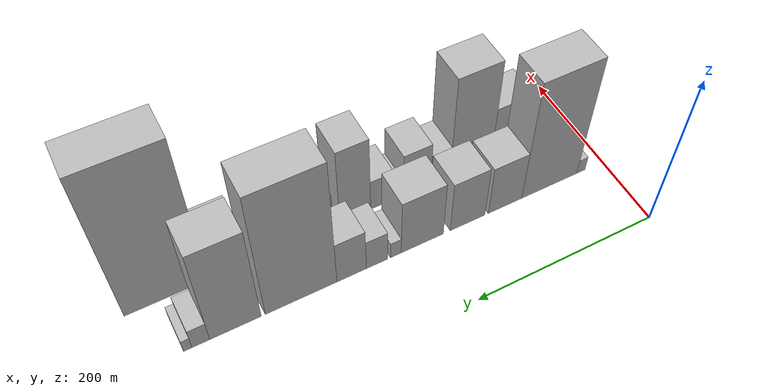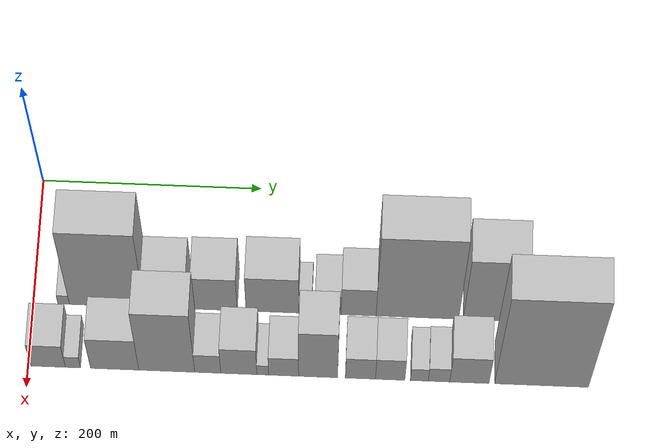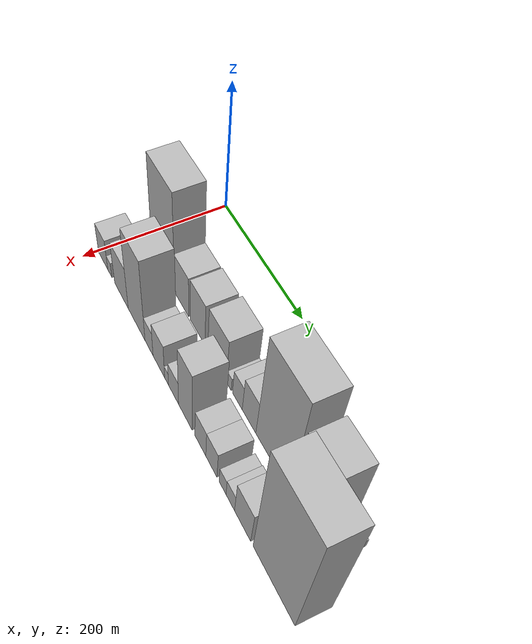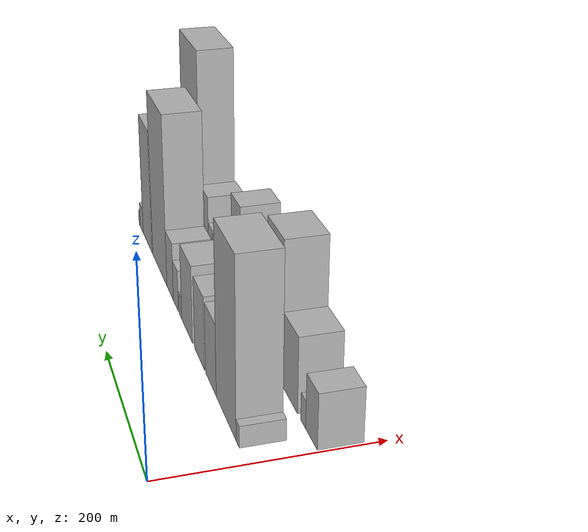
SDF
<sdf version="1.6">
 <world name="default">
  <model name="building_15">
   <static>1</static>
   <pose>100.0000 27.5183 0 0.000000 0.000000 0.000000</pose>
   <link name="link">
    <pose>0 0 10.50 0 0 0</pose>
    <collision name="collision"><geometry><box><size>40.0000 10.3953 21.0000</size></box></geometry></collision>
    <visual name="visual">
     <cast_shadows>0</cast_shadows>
     <geometry><box><size>40.0000 10.3953 21.0000</size></box></geometry>
     <material>
      <script>
       <uri>model://HANNAS_wall/materials/scripts</uri>
       <uri>model://HANNAS_wall/materials/textures</uri>
       <name>vrc/HANNAS_wall</name>
      </script>
     </material>
    </visual>
   </link>
  </model>
  <model name="building_16">
   <static>1</static>
   <pose>100.0000 66.5081 0 0.000000 0.000000 0.000000</pose>
   <link name="link">
    <pose>0 0 85.50 0 0 0</pose>
    <collision name="collision"><geometry><box><size>40.0000 67.5843 171.0000</size></box></geometry></collision>
    <visual name="visual">
     <cast_shadows>0</cast_shadows>
     <geometry><box><size>40.0000 67.5843 171.0000</size></box></geometry>
     <material>
      <script>
       <uri>model://HANNAS_wall/materials/scripts</uri>
       <uri>model://HANNAS_wall/materials/textures</uri>
       <name>vrc/HANNAS_wall</name>
      </script>
     </material>
    </visual>
   </link>
  </model>
  <model name="building_17">
   <static>1</static>
   <pose>100.0000 120.1196 0 0.000000 0.000000 0.000000</pose>
   <link name="link">
    <pose>0 0 36.00 0 0 0</pose>
    <collision name="collision"><geometry><box><size>40.0000 39.6385 72.0000</size></box></geometry></collision>
    <visual name="visual">
     <cast_shadows>0</cast_shadows>
     <geometry><box><size>40.0000 39.6385 72.0000</size></box></geometry>
     <material>
      <script>
       <uri>model://HANNAS_wall/materials/scripts</uri>
       <uri>model://HANNAS_wall/materials/textures</uri>
       <name>vrc/HANNAS_wall</name>
      </script>
     </material>
    </visual>
   </link>
  </model>
  <model name="building_18">
   <static>1</static>
   <pose>100.0000 163.9868 0 0.000000 0.000000 0.000000</pose>
   <link name="link">
    <pose>0 0 37.50 0 0 0</pose>
    <collision name="collision"><geometry><box><size>40.0000 40.0959 75.0000</size></box></geometry></collision>
    <visual name="visual">
     <cast_shadows>0</cast_shadows>
     <geometry><box><size>40.0000 40.0959 75.0000</size></box></geometry>
     <material>
      <script>
       <uri>model://HANNAS_wall/materials/scripts</uri>
       <uri>model://HANNAS_wall/materials/textures</uri>
       <name>vrc/HANNAS_wall</name>
      </script>
     </material>
    </visual>
   </link>
  </model>
  <model name="building_19">
   <static>1</static>
   <pose>100.0000 215.6951 0 0.000000 0.000000 0.000000</pose>
   <link name="link">
    <pose>0 0 40.50 0 0 0</pose>
    <collision name="collision"><geometry><box><size>40.0000 47.3208 81.0000</size></box></geometry></collision>
    <visual name="visual">
     <cast_shadows>0</cast_shadows>
     <geometry><box><size>40.0000 47.3208 81.0000</size></box></geometry>
     <material>
      <script>
       <uri>model://HANNAS_wall/materials/scripts</uri>
       <uri>model://HANNAS_wall/materials/textures</uri>
       <name>vrc/HANNAS_wall</name>
      </script>
     </material>
    </visual>
   </link>
  </model>
  <model name="building_20">
   <static>1</static>
   <pose>100.0000 245.2109 0 0.000000 0.000000 0.000000</pose>
   <link name="link">
    <pose>0 0 12.00 0 0 0</pose>
    <collision name="collision"><geometry><box><size>40.0000 11.7108 24.0000</size></box></geometry></collision>
    <visual name="visual">
     <cast_shadows>0</cast_shadows>
     <geometry><box><size>40.0000 11.7108 24.0000</size></box></geometry>
     <material>
      <script>
       <uri>model://HANNAS_wall/materials/scripts</uri>
       <uri>model://HANNAS_wall/materials/textures</uri>
       <name>vrc/HANNAS_wall</name>
      </script>
     </material>
    </visual>
   </link>
  </model>
  <model name="building_21">
   <static>1</static>
   <pose>100.0000 265.7919 0 0.000000 0.000000 0.000000</pose>
   <link name="link">
    <pose>0 0 22.50 0 0 0</pose>
    <collision name="collision"><geometry><box><size>40.0000 23.4512 45.0000</size></box></geometry></collision>
    <visual name="visual">
     <cast_shadows>0</cast_shadows>
     <geometry><box><size>40.0000 23.4512 45.0000</size></box></geometry>
     <material>
      <script>
       <uri>model://HANNAS_wall/materials/scripts</uri>
       <uri>model://HANNAS_wall/materials/textures</uri>
       <name>vrc/HANNAS_wall</name>
      </script>
     </material>
    </visual>
   </link>
  </model>
  <model name="building_22">
   <static>1</static>
   <pose>100.0000 293.2767 0 0.000000 0.000000 0.000000</pose>
   <link name="link">
    <pose>0 0 31.50 0 0 0</pose>
    <collision name="collision"><geometry><box><size>40.0000 31.5184 63.0000</size></box></geometry></collision>
    <visual name="visual">
     <cast_shadows>0</cast_shadows>
     <geometry><box><size>40.0000 31.5184 63.0000</size></box></geometry>
     <material>
      <script>
       <uri>model://HANNAS_wall/materials/scripts</uri>
       <uri>model://HANNAS_wall/materials/textures</uri>
       <name>vrc/HANNAS_wall</name>
      </script>
     </material>
    </visual>
   </link>
  </model>
  <model name="building_23">
   <static>1</static>
   <pose>100.0000 346.1778 0 0.000000 0.000000 0.000000</pose>
   <link name="link">
    <pose>0 0 93.00 0 0 0</pose>
    <collision name="collision"><geometry><box><size>40.0000 74.2838 186.0000</size></box></geometry></collision>
    <visual name="visual">
     <cast_shadows>0</cast_shadows>
     <geometry><box><size>40.0000 74.2838 186.0000</size></box></geometry>
     <material>
      <script>
       <uri>model://HANNAS_wall/materials/scripts</uri>
       <uri>model://HANNAS_wall/materials/textures</uri>
       <name>vrc/HANNAS_wall</name>
      </script>
     </material>
    </visual>
   </link>
  </model>
  <model name="building_24">
   <static>1</static>
   <pose>100.0000 412.9397 0 0.000000 0.000000 0.000000</pose>
   <link name="link">
    <pose>0 0 70.50 0 0 0</pose>
    <collision name="collision"><geometry><box><size>40.0000 51.2400 141.0000</size></box></geometry></collision>
    <visual name="visual">
     <cast_shadows>0</cast_shadows>
     <geometry><box><size>40.0000 51.2400 141.0000</size></box></geometry>
     <material>
      <script>
       <uri>model://HANNAS_wall/materials/scripts</uri>
       <uri>model://HANNAS_wall/materials/textures</uri>
       <name>vrc/HANNAS_wall</name>
      </script>
     </material>
    </visual>
   </link>
  </model>
  <model name="building_25">
   <static>1</static>
   <pose>100.0000 447.2016 0 0.000000 0.000000 0.000000</pose>
   <link name="link">
    <pose>0 0 15.00 0 0 0</pose>
    <collision name="collision"><geometry><box><size>40.0000 17.2837 30.0000</size></box></geometry></collision>
    <visual name="visual">
     <cast_shadows>0</cast_shadows>
     <geometry><box><size>40.0000 17.2837 30.0000</size></box></geometry>
     <material>
      <script>
       <uri>model://HANNAS_wall/materials/scripts</uri>
       <uri>model://HANNAS_wall/materials/textures</uri>
       <name>vrc/HANNAS_wall</name>
      </script>
     </material>
    </visual>
   </link>
  </model>
  <model name="building_26">
   <static>1</static>
   <pose>100.0000 459.8907 0 0.000000 0.000000 0.000000</pose>
   <link name="link">
    <pose>0 0 9.00 0 0 0</pose>
    <collision name="collision"><geometry><box><size>40.0000 8.0946 18.0000</size></box></geometry></collision>
    <visual name="visual">
     <cast_shadows>0</cast_shadows>
     <geometry><box><size>40.0000 8.0946 18.0000</size></box></geometry>
     <material>
      <script>
       <uri>model://HANNAS_wall/materials/scripts</uri>
       <uri>model://HANNAS_wall/materials/textures</uri>
       <name>vrc/HANNAS_wall</name>
      </script>
     </material>
    </visual>
   </link>
  </model>
  <model name="building_38">
   <static>1</static>
   <pose>160.0000 18.0948 0 0.000000 0.000000 0.000000</pose>
   <link name="link">
    <pose>0 0 27.00 0 0 0</pose>
    <collision name="collision"><geometry><box><size>40.0000 31.0434 54.0000</size></box></geometry></collision>
    <visual name="visual">
     <cast_shadows>0</cast_shadows>
     <geometry><box><size>40.0000 31.0434 54.0000</size></box></geometry>
     <material>
      <script>
       <uri>model://HANNAS_wall/materials/scripts</uri>
       <uri>model://HANNAS_wall/materials/textures</uri>
       <name>vrc/HANNAS_wall</name>
      </script>
     </material>
    </visual>
   </link>
  </model>
  <model name="building_39">
   <static>1</static>
   <pose>160.0000 40.2983 0 0.000000 0.000000 0.000000</pose>
   <link name="link">
    <pose>0 0 13.50 0 0 0</pose>
    <collision name="collision"><geometry><box><size>40.0000 13.3636 27.0000</size></box></geometry></collision>
    <visual name="visual">
     <cast_shadows>0</cast_shadows>
     <geometry><box><size>40.0000 13.3636 27.0000</size></box></geometry>
     <material>
      <script>
       <uri>model://HANNAS_wall/materials/scripts</uri>
       <uri>model://HANNAS_wall/materials/textures</uri>
       <name>vrc/HANNAS_wall</name>
      </script>
     </material>
    </visual>
   </link>
  </model>
  <model name="building_40">
   <static>1</static>
   <pose>160.0000 77.5541 0 0.000000 0.000000 0.000000</pose>
   <link name="link">
    <pose>0 0 37.50 0 0 0</pose>
    <collision name="collision"><geometry><box><size>40.0000 43.1480 75.0000</size></box></geometry></collision>
    <visual name="visual">
     <cast_shadows>0</cast_shadows>
     <geometry><box><size>40.0000 43.1480 75.0000</size></box></geometry>
     <material>
      <script>
       <uri>model://HANNAS_wall/materials/scripts</uri>
       <uri>model://HANNAS_wall/materials/textures</uri>
       <name>vrc/HANNAS_wall</name>
      </script>
     </material>
    </visual>
   </link>
  </model>
  <model name="building_41">
   <static>1</static>
   <pose>160.0000 124.1093 0 0.000000 0.000000 0.000000</pose>
   <link name="link">
    <pose>0 0 72.00 0 0 0</pose>
    <collision name="collision"><geometry><box><size>40.0000 49.9624 144.0000</size></box></geometry></collision>
    <visual name="visual">
     <cast_shadows>0</cast_shadows>
     <geometry><box><size>40.0000 49.9624 144.0000</size></box></geometry>
     <material>
      <script>
       <uri>model://HANNAS_wall/materials/scripts</uri>
       <uri>model://HANNAS_wall/materials/textures</uri>
       <name>vrc/HANNAS_wall</name>
      </script>
     </material>
    </visual>
   </link>
  </model>
  <model name="building_42">
   <static>1</static>
   <pose>160.0000 160.6854 0 0.000000 0.000000 0.000000</pose>
   <link name="link">
    <pose>0 0 22.50 0 0 0</pose>
    <collision name="collision"><geometry><box><size>40.0000 23.1897 45.0000</size></box></geometry></collision>
    <visual name="visual">
     <cast_shadows>0</cast_shadows>
     <geometry><box><size>40.0000 23.1897 45.0000</size></box></geometry>
     <material>
      <script>
       <uri>model://HANNAS_wall/materials/scripts</uri>
       <uri>model://HANNAS_wall/materials/textures</uri>
       <name>vrc/HANNAS_wall</name>
      </script>
     </material>
    </visual>
   </link>
  </model>
  <model name="building_43">
   <static>1</static>
   <pose>160.0000 188.3637 0 0.000000 0.000000 0.000000</pose>
   <link name="link">
    <pose>0 0 31.50 0 0 0</pose>
    <collision name="collision"><geometry><box><size>40.0000 32.1671 63.0000</size></box></geometry></collision>
    <visual name="visual">
     <cast_shadows>0</cast_shadows>
     <geometry><box><size>40.0000 32.1671 63.0000</size></box></geometry>
     <material>
      <script>
       <uri>model://HANNAS_wall/materials/scripts</uri>
       <uri>model://HANNAS_wall/materials/textures</uri>
       <name>vrc/HANNAS_wall</name>
      </script>
     </material>
    </visual>
   </link>
  </model>
  <model name="building_44">
   <static>1</static>
   <pose>160.0000 209.7077 0 0.000000 0.000000 0.000000</pose>
   <link name="link">
    <pose>0 0 12.00 0 0 0</pose>
    <collision name="collision"><geometry><box><size>40.0000 10.5209 24.0000</size></box></geometry></collision>
    <visual name="visual">
     <cast_shadows>0</cast_shadows>
     <geometry><box><size>40.0000 10.5209 24.0000</size></box></geometry>
     <material>
      <script>
       <uri>model://HANNAS_wall/materials/scripts</uri>
       <uri>model://HANNAS_wall/materials/textures</uri>
       <name>vrc/HANNAS_wall</name>
      </script>
     </material>
    </visual>
   </link>
  </model>
  <model name="building_45">
   <static>1</static>
   <pose>160.0000 228.3208 0 0.000000 0.000000 0.000000</pose>
   <link name="link">
    <pose>0 0 22.50 0 0 0</pose>
    <collision name="collision"><geometry><box><size>40.0000 26.7052 45.0000</size></box></geometry></collision>
    <visual name="visual">
     <cast_shadows>0</cast_shadows>
     <geometry><box><size>40.0000 26.7052 45.0000</size></box></geometry>
     <material>
      <script>
       <uri>model://HANNAS_wall/materials/scripts</uri>
       <uri>model://HANNAS_wall/materials/textures</uri>
       <name>vrc/HANNAS_wall</name>
      </script>
     </material>
    </visual>
   </link>
  </model>
  <model name="building_46">
   <static>1</static>
   <pose>160.0000 259.0730 0 0.000000 0.000000 0.000000</pose>
   <link name="link">
    <pose>0 0 55.50 0 0 0</pose>
    <collision name="collision"><geometry><box><size>40.0000 34.7992 111.0000</size></box></geometry></collision>
    <visual name="visual">
     <cast_shadows>0</cast_shadows>
     <geometry><box><size>40.0000 34.7992 111.0000</size></box></geometry>
     <material>
      <script>
       <uri>model://HANNAS_wall/materials/scripts</uri>
       <uri>model://HANNAS_wall/materials/textures</uri>
       <name>vrc/HANNAS_wall</name>
      </script>
     </material>
    </visual>
   </link>
  </model>
  <model name="building_47">
   <static>1</static>
   <pose>160.0000 296.8585 0 0.000000 0.000000 0.000000</pose>
   <link name="link">
    <pose>0 0 25.50 0 0 0</pose>
    <collision name="collision"><geometry><box><size>40.0000 26.7717 51.0000</size></box></geometry></collision>
    <visual name="visual">
     <cast_shadows>0</cast_shadows>
     <geometry><box><size>40.0000 26.7717 51.0000</size></box></geometry>
     <material>
      <script>
       <uri>model://HANNAS_wall/materials/scripts</uri>
       <uri>model://HANNAS_wall/materials/textures</uri>
       <name>vrc/HANNAS_wall</name>
      </script>
     </material>
    </visual>
   </link>
  </model>
  <model name="building_48">
   <static>1</static>
   <pose>160.0000 323.3542 0 0.000000 0.000000 0.000000</pose>
   <link name="link">
    <pose>0 0 25.50 0 0 0</pose>
    <collision name="collision"><geometry><box><size>40.0000 26.2198 51.0000</size></box></geometry></collision>
    <visual name="visual">
     <cast_shadows>0</cast_shadows>
     <geometry><box><size>40.0000 26.2198 51.0000</size></box></geometry>
     <material>
      <script>
       <uri>model://HANNAS_wall/materials/scripts</uri>
       <uri>model://HANNAS_wall/materials/textures</uri>
       <name>vrc/HANNAS_wall</name>
      </script>
     </material>
    </visual>
   </link>
  </model>
  <model name="building_49">
   <static>1</static>
   <pose>160.0000 349.4036 0 0.000000 0.000000 0.000000</pose>
   <link name="link">
    <pose>0 0 15.00 0 0 0</pose>
    <collision name="collision"><geometry><box><size>40.0000 15.8789 30.0000</size></box></geometry></collision>
    <visual name="visual">
     <cast_shadows>0</cast_shadows>
     <geometry><box><size>40.0000 15.8789 30.0000</size></box></geometry>
     <material>
      <script>
       <uri>model://HANNAS_wall/materials/scripts</uri>
       <uri>model://HANNAS_wall/materials/textures</uri>
       <name>vrc/HANNAS_wall</name>
      </script>
     </material>
    </visual>
   </link>
  </model>
  <model name="building_50">
   <static>1</static>
   <pose>160.0000 366.9161 0 0.000000 0.000000 0.000000</pose>
   <link name="link">
    <pose>0 0 16.50 0 0 0</pose>
    <collision name="collision"><geometry><box><size>40.0000 19.1460 33.0000</size></box></geometry></collision>
    <visual name="visual">
     <cast_shadows>0</cast_shadows>
     <geometry><box><size>40.0000 19.1460 33.0000</size></box></geometry>
     <material>
      <script>
       <uri>model://HANNAS_wall/materials/scripts</uri>
       <uri>model://HANNAS_wall/materials/textures</uri>
       <name>vrc/HANNAS_wall</name>
      </script>
     </material>
    </visual>
   </link>
  </model>
  <model name="building_51">
   <static>1</static>
   <pose>160.0000 393.9212 0 0.000000 0.000000 0.000000</pose>
   <link name="link">
    <pose>0 0 31.50 0 0 0</pose>
    <collision name="collision"><geometry><box><size>40.0000 34.8642 63.0000</size></box></geometry></collision>
    <visual name="visual">
     <cast_shadows>0</cast_shadows>
     <geometry><box><size>40.0000 34.8642 63.0000</size></box></geometry>
     <material>
      <script>
       <uri>model://HANNAS_wall/materials/scripts</uri>
       <uri>model://HANNAS_wall/materials/textures</uri>
       <name>vrc/HANNAS_wall</name>
      </script>
     </material>
    </visual>
   </link>
  </model>
  <model name="building_52">
   <static>1</static>
   <pose>160.0000 458.1103 0 0.000000 0.000000 0.000000</pose>
   <link name="link">
    <pose>0 0 106.50 0 0 0</pose>
    <collision name="collision"><geometry><box><size>40.0000 83.5142 213.0000</size></box></geometry></collision>
    <visual name="visual">
     <cast_shadows>0</cast_shadows>
     <geometry><box><size>40.0000 83.5142 213.0000</size></box></geometry>
     <material>
      <script>
       <uri>model://HANNAS_wall/materials/scripts</uri>
       <uri>model://HANNAS_wall/materials/textures</uri>
       <name>vrc/HANNAS_wall</name>
      </script>
     </material>
    </visual>
   </link>
  </model>
 </world>
</sdf>
